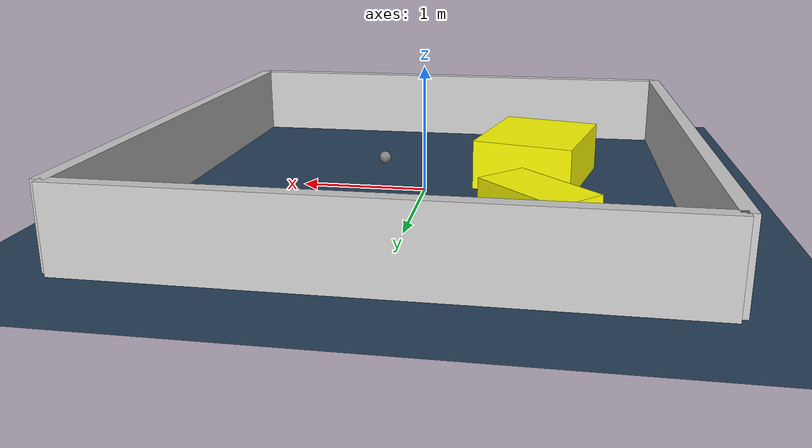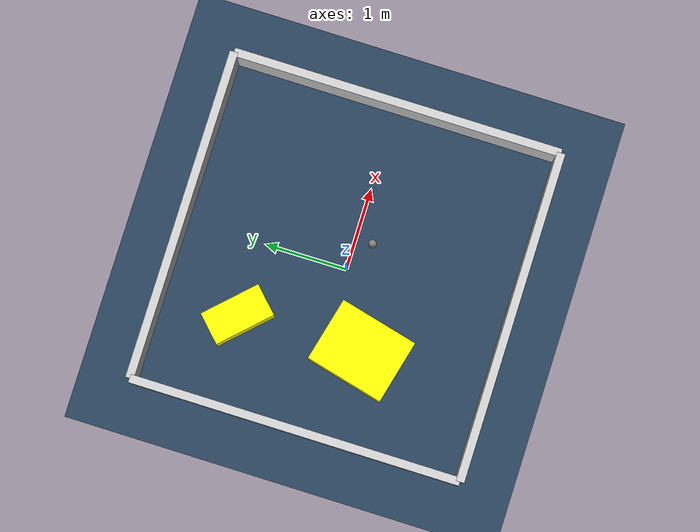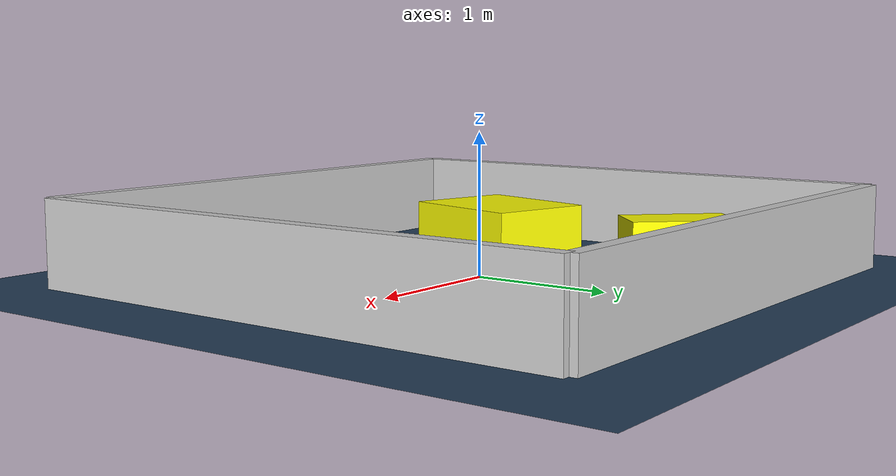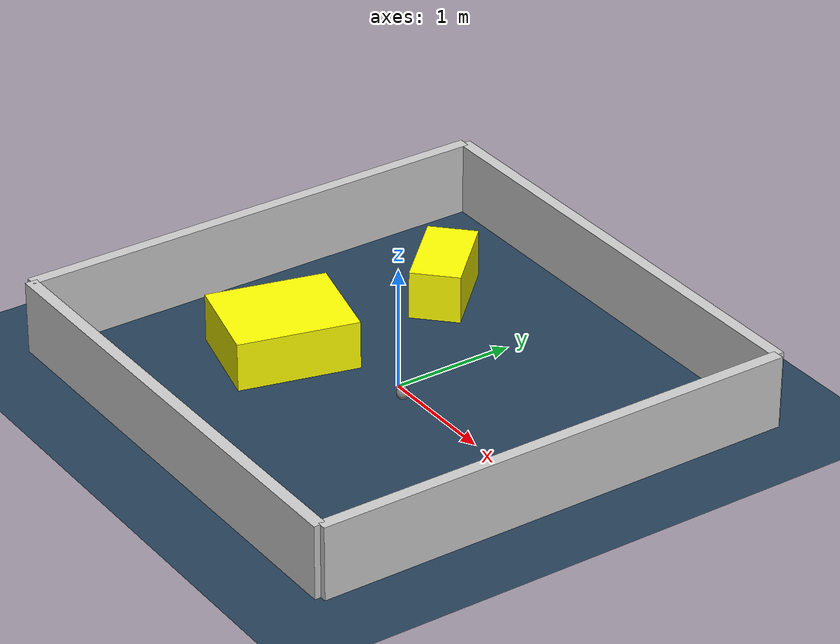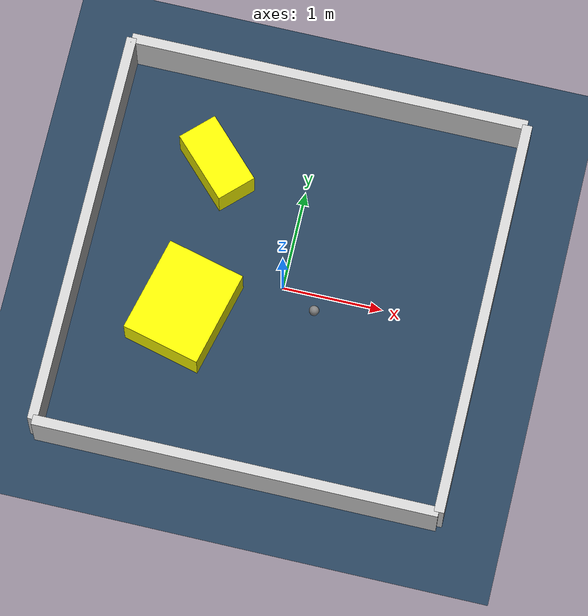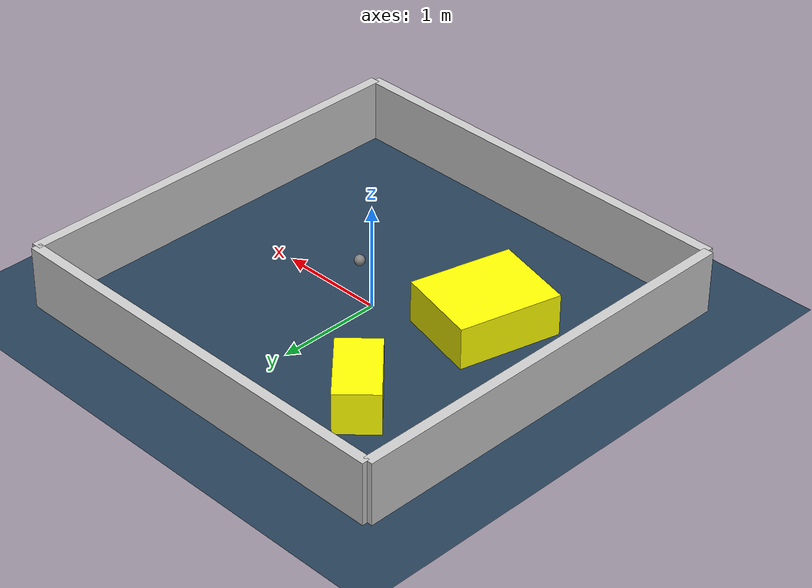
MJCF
<?xml version="1.0" ?>
<mujoco model="generated_environment">
  <option timestep="0.01" integrator="RK4" cone="elliptic"/>
  <default>
    <geom density="1"/>
  </default>
  <asset>
    <texture builtin="gradient" height="3072" rgb1="0.3 0.5 0.7" rgb2="0 0 0" type="skybox" width="512"/>
    <texture builtin="checker" height="300" mark="edge" markrgb="0.8 0.8 0.8" name="groundplane" rgb1="0.2 0.3 0.4" rgb2="0.1 0.2 0.3" type="2d" width="300"/>
    <material name="groundplane" reflectance="0.2" texrepeat="5 5" texture="groundplane" texuniform="true"/>
    <material name="robot" rgba="0.0 1.0 0.0 1"/>
  </asset>
  <worldbody>
    <light dir="0 0 -1" directional="true" pos="0 0 1.5"/>
    <geom condim="4" friction="1.0 0.005 0.001" material="groundplane" name="floor" size="0 0 0.05" type="plane"/>
    <body name="walls">
      <geom name="wall_1" condim="4" pos="-2.0 0.0 0.3" rgba="0.800000011920929 0.800000011920929 0.800000011920929 1.0" size="0.05 2.0 0.3" type="box"/>
      <geom name="wall_2" condim="4" pos="2.0 0.0 0.3" rgba="0.800000011920929 0.800000011920929 0.800000011920929 1.0" size="0.05 2.0 0.3" type="box"/>
      <geom name="wall_3" condim="4" pos="0.0 -2.0 0.3" rgba="0.800000011920929 0.800000011920929 0.800000011920929 1.0" size="2.0 0.05 0.3" type="box"/>
      <geom name="wall_4" condim="4" pos="0.0 2.0 0.3" rgba="0.800000011920929 0.800000011920929 0.800000011920929 1.0" size="2.0 0.05 0.3" type="box"/>
    </body>
    <body name="robot">
      <joint name="joint_x" type="slide" pos="0 0 0" axis="1 0 0"/>
      <joint name="joint_y" type="slide" pos="0 0 0" axis="0 1 0"/>
      <geom name="robot" type="sphere" pos="0.36575076395565986 -0.2099103618929148 0.2" size="0.05" mass="5." friction="1.0 0.005 0.0001" condim="4"/>
      <site name="sensor_ball"/>
    </body>
    <body name="obstacle_1_movable">
      <geom name="obstacle_1_movable" condim="4" pos="-0.9115044672225272 1.045734844443265 0.2" euler="0 0 44.41979304531037" friction="1.0 0.005 0.001" rgba="1 1 0 1" size="0.20371220985959654 0.37794791326169674 0.2" type="box" mass="0.1"/>
      <joint type="free"/>
    </body>
    <body name="obstacle_2_movable">
      <geom name="obstacle_2_movable" condim="4" pos="-0.8835332105151698 -0.4648499637137986 0.2" euler="0 0 75.97076789629372" friction="1.0 0.005 0.001" rgba="1 1 0 1" size="0.48966449129731726 0.3991146840398013 0.2" type="box" mass="0.1"/>
      <joint type="free"/>
    </body>
  </worldbody>
  <actuator>
    <motor name="actuator_x" joint="joint_x" gear="1" ctrlrange="-1 1"/>
    <motor name="actuator_y" joint="joint_y" gear="1" ctrlrange="-1 1"/>
  </actuator>
</mujoco>
